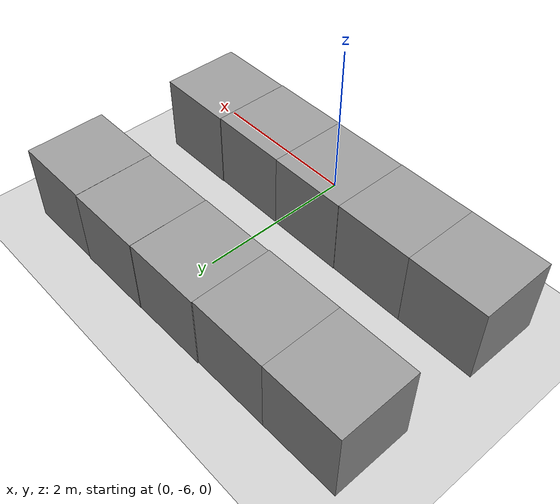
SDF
<sdf version="1.7">
 <world name="default">
  <plugin name="gazebo_ros_state" filename="libgazebo_ros_state.so">
   <ros><namespace>/gazebo</namespace></ros>
   <update_rate>50.0</update_rate>
  </plugin>
  <light name="sun" type="directional">
   <pose>0 0 10 0 -0 0</pose>
   <diffuse>0.8 0.8 0.8 1</diffuse>
   <specular>0.2 0.2 0.2 1</specular>
   <attenuation>
    <range>1000</range>
    <constant>0.9</constant>
    <linear>0.01</linear>
    <quadratic>0.001</quadratic>
   </attenuation>
   <direction>-0.5 0.1 -0.9</direction>
   <spot><inner_angle>0</inner_angle><outer_angle>0</outer_angle><falloff>0</falloff></spot>
  </light>
  <model name="ground_plane">
   <static>1</static>
   <link name="link">
    <collision name="collision">
     <geometry><plane><normal>0 0 1</normal><size>100 100</size></plane></geometry>
     <surface><friction><ode><mu>100</mu><mu2>50</mu2></ode></friction></surface>
    </collision>
    <visual name="visual">
     <cast_shadows>0</cast_shadows>
     <geometry><plane><normal>0 0 1</normal><size>100 100</size></plane></geometry>
     <material>
      <script><uri>file://media/materials/scripts/gazebo.material</uri><name>Gazebo/Grey</name></script>
     </material>
    </visual>
   </link>
  </model>
  <physics type="ode">
   <real_time_update_rate>1000</real_time_update_rate>
   <max_step_size>0.001</max_step_size>
   <real_time_factor>1</real_time_factor>
   <ode>
    <solver>
     <type>quick</type>
     <iters>150</iters>
     <precon_iters>0</precon_iters>
     <sor>1.4</sor>
     <use_dynamic_moi_rescaling>1</use_dynamic_moi_rescaling>
    </solver>
    <constraints>
     <cfm>1e-05</cfm>
     <erp>0.2</erp>
     <contact_max_correcting_vel>2000</contact_max_correcting_vel>
     <contact_surface_layer>0.01</contact_surface_layer>
    </constraints>
   </ode>
  </physics>
  <scene><ambient>0.4 0.4 0.4 1</ambient><background>0.7 0.7 0.7 1</background><shadows>1</shadows></scene>
  <gravity>0 0 -9.8</gravity>
  <magnetic_field>6e-06 2.3e-05 -4.2e-05</magnetic_field>
  <atmosphere type="adiabatic"/>
  <audio><device>default</device></audio>
  <spherical_coordinates>
   <surface_model>EARTH_WGS84</surface_model>
   <latitude_deg>0</latitude_deg>
   <longitude_deg>0</longitude_deg>
   <elevation>0</elevation>
   <heading_deg>0</heading_deg>
  </spherical_coordinates>
  <model name="unit_box">
   <pose>1.51977 -3.48925 0.5 0 -0 0.008712</pose>
   <link name="link">
    <inertial>
     <mass>1</mass>
     <inertia>
      <ixx>0.166667</ixx>
      <ixy>0</ixy>
      <ixz>0</ixz>
      <iyy>0.166667</iyy>
      <iyz>0</iyz>
      <izz>0.166667</izz>
     </inertia>
    </inertial>
    <collision name="collision"><geometry><box><size>1 1 1</size></box></geometry></collision>
    <visual name="visual">
     <geometry><box><size>1 1 1</size></box></geometry>
     <material>
      <script><name>Gazebo/Grey</name><uri>file://media/materials/scripts/gazebo.material</uri></script>
     </material>
    </visual>
   </link>
  </model>
  <model name="unit_box_0">
   <pose>0.518471 -3.49246 0.5 0 -0 0.011289</pose>
   <link name="link">
    <inertial>
     <mass>1</mass>
     <inertia>
      <ixx>0.166667</ixx>
      <ixy>0</ixy>
      <ixz>0</ixz>
      <iyy>0.166667</iyy>
      <iyz>0</iyz>
      <izz>0.166667</izz>
     </inertia>
    </inertial>
    <collision name="collision"><geometry><box><size>1 1 1</size></box></geometry></collision>
    <visual name="visual">
     <geometry><box><size>1 1 1</size></box></geometry>
     <material>
      <script><name>Gazebo/Grey</name><uri>file://media/materials/scripts/gazebo.material</uri></script>
     </material>
    </visual>
    <self_collide>1</self_collide>
   </link>
  </model>
  <model name="unit_box_1">
   <pose>-0.482466 -3.50899 0.5 0 -0 0.013419</pose>
   <link name="link">
    <inertial>
     <mass>1</mass>
     <inertia>
      <ixx>0.166667</ixx>
      <ixy>0</ixy>
      <ixz>0</ixz>
      <iyy>0.166667</iyy>
      <iyz>0</iyz>
      <izz>0.166667</izz>
     </inertia>
    </inertial>
    <collision name="collision"><geometry><box><size>1 1 1</size></box></geometry></collision>
    <visual name="visual">
     <geometry><box><size>1 1 1</size></box></geometry>
     <material>
      <script><name>Gazebo/Grey</name><uri>file://media/materials/scripts/gazebo.material</uri></script>
     </material>
    </visual>
   </link>
  </model>
  <model name="unit_box_2">
   <pose>-1.48225 -3.53246 0.5 0 -0 0.013444</pose>
   <link name="link">
    <inertial>
     <mass>1</mass>
     <inertia>
      <ixx>0.166667</ixx>
      <ixy>0</ixy>
      <ixz>0</ixz>
      <iyy>0.166667</iyy>
      <iyz>0</iyz>
      <izz>0.166667</izz>
     </inertia>
    </inertial>
    <collision name="collision"><geometry><box><size>1 1 1</size></box></geometry></collision>
    <visual name="visual">
     <geometry><box><size>1 1 1</size></box></geometry>
     <material>
      <script><name>Gazebo/Grey</name><uri>file://media/materials/scripts/gazebo.material</uri></script>
     </material>
    </visual>
    <self_collide>1</self_collide>
   </link>
  </model>
  <model name="unit_box_3">
   <pose>1.51261 -5.49645 0.5 0 0 -3.6e-05</pose>
   <link name="link">
    <inertial>
     <mass>1</mass>
     <inertia>
      <ixx>0.166667</ixx>
      <ixy>0</ixy>
      <ixz>0</ixz>
      <iyy>0.166667</iyy>
      <iyz>0</iyz>
      <izz>0.166667</izz>
     </inertia>
    </inertial>
    <collision name="collision"><geometry><box><size>1 1 1</size></box></geometry></collision>
    <visual name="visual">
     <geometry><box><size>1 1 1</size></box></geometry>
     <material>
      <script><name>Gazebo/Grey</name><uri>file://media/materials/scripts/gazebo.material</uri></script>
     </material>
    </visual>
    <self_collide>1</self_collide>
   </link>
  </model>
  <model name="unit_box_4">
   <pose>0.512502 -5.50369 0.5 0 -0 6e-06</pose>
   <link name="link">
    <inertial>
     <mass>1</mass>
     <inertia>
      <ixx>0.166667</ixx>
      <ixy>0</ixy>
      <ixz>0</ixz>
      <iyy>0.166667</iyy>
      <iyz>0</iyz>
      <izz>0.166667</izz>
     </inertia>
    </inertial>
    <collision name="collision"><geometry><box><size>1 1 1</size></box></geometry></collision>
    <visual name="visual">
     <geometry><box><size>1 1 1</size></box></geometry>
     <material>
      <script><name>Gazebo/Grey</name><uri>file://media/materials/scripts/gazebo.material</uri></script>
     </material>
    </visual>
    <self_collide>1</self_collide>
   </link>
  </model>
  <model name="unit_box_5">
   <pose>-0.4875 -5.50019 0.5 0 -0 4e-06</pose>
   <link name="link">
    <inertial>
     <mass>1</mass>
     <inertia>
      <ixx>0.166667</ixx>
      <ixy>0</ixy>
      <ixz>0</ixz>
      <iyy>0.166667</iyy>
      <iyz>0</iyz>
      <izz>0.166667</izz>
     </inertia>
    </inertial>
    <collision name="collision"><geometry><box><size>1 1 1</size></box></geometry></collision>
    <visual name="visual">
     <geometry><box><size>1 1 1</size></box></geometry>
     <material>
      <script><name>Gazebo/Grey</name><uri>file://media/materials/scripts/gazebo.material</uri></script>
     </material>
    </visual>
    <self_collide>1</self_collide>
   </link>
  </model>
  <model name="unit_box_6">
   <pose>-1.48751 -5.50391 0.5 0 -0 7e-06</pose>
   <link name="link">
    <inertial>
     <mass>1</mass>
     <inertia>
      <ixx>0.166667</ixx>
      <ixy>0</ixy>
      <ixz>0</ixz>
      <iyy>0.166667</iyy>
      <iyz>0</iyz>
      <izz>0.166667</izz>
     </inertia>
    </inertial>
    <collision name="collision"><geometry><box><size>1 1 1</size></box></geometry></collision>
    <visual name="visual">
     <geometry><box><size>1 1 1</size></box></geometry>
     <material>
      <script><name>Gazebo/Grey</name><uri>file://media/materials/scripts/gazebo.material</uri></script>
     </material>
    </visual>
    <self_collide>1</self_collide>
   </link>
  </model>
  <model name="unit_box_7">
   <pose>-2.48219 -3.54536 0.5 0 -0 0.013466</pose>
   <link name="link">
    <inertial>
     <mass>1</mass>
     <inertia>
      <ixx>0.166667</ixx>
      <ixy>0</ixy>
      <ixz>0</ixz>
      <iyy>0.166667</iyy>
      <iyz>0</iyz>
      <izz>0.166667</izz>
     </inertia>
    </inertial>
    <collision name="collision"><geometry><box><size>1 1 1</size></box></geometry></collision>
    <visual name="visual">
     <geometry><box><size>1 1 1</size></box></geometry>
     <material>
      <script><name>Gazebo/Grey</name><uri>file://media/materials/scripts/gazebo.material</uri></script>
     </material>
    </visual>
    <self_collide>1</self_collide>
   </link>
  </model>
  <model name="unit_box_8">
   <pose>-2.48754 -5.50452 0.5 0 -0 4.1e-05</pose>
   <link name="link">
    <inertial>
     <mass>1</mass>
     <inertia>
      <ixx>0.166667</ixx>
      <ixy>0</ixy>
      <ixz>0</ixz>
      <iyy>0.166667</iyy>
      <iyz>0</iyz>
      <izz>0.166667</izz>
     </inertia>
    </inertial>
    <collision name="collision"><geometry><box><size>1 1 1</size></box></geometry></collision>
    <visual name="visual">
     <geometry><box><size>1 1 1</size></box></geometry>
     <material>
      <script><name>Gazebo/Grey</name><uri>file://media/materials/scripts/gazebo.material</uri></script>
     </material>
    </visual>
    <self_collide>1</self_collide>
   </link>
  </model>
 </world>
</sdf>
